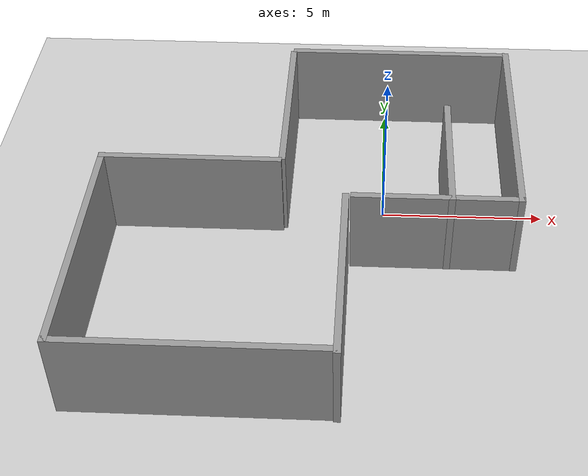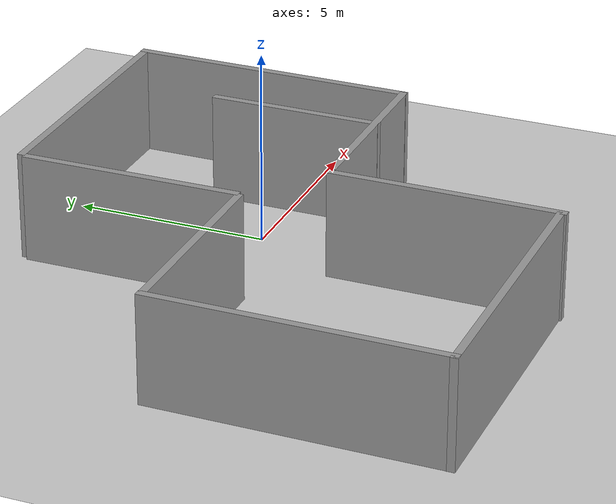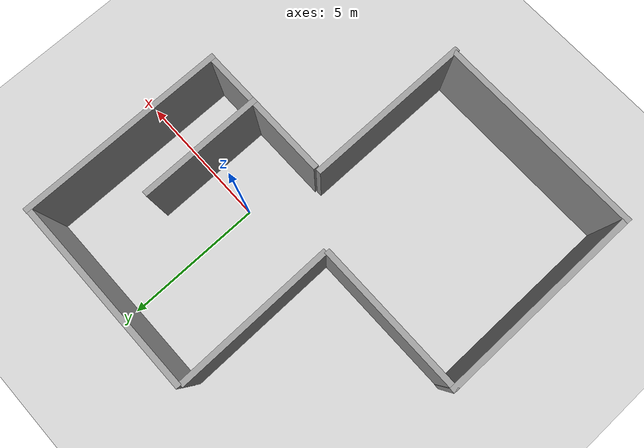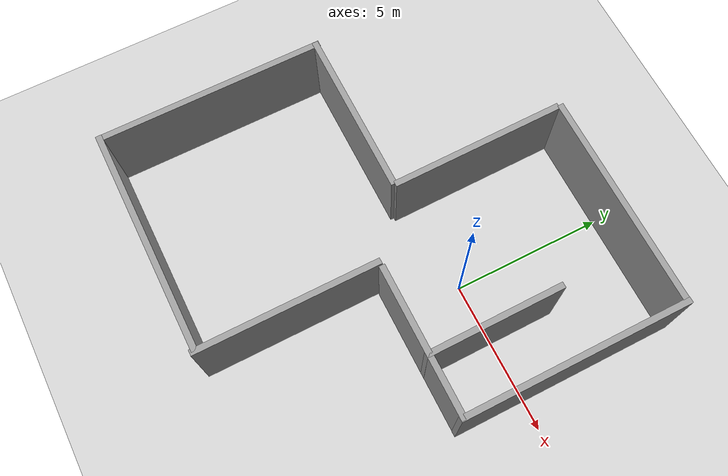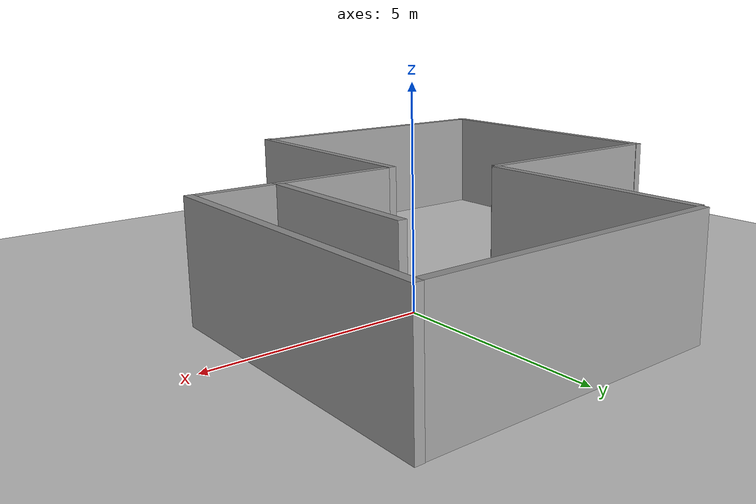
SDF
<sdf version="1.6">
 <world name="default">
  <light name="sun" type="directional">
   <pose>0 0 10 0 -0 0</pose>
   <diffuse>0.8 0.8 0.8 1</diffuse>
   <specular>0.1 0.1 0.1 1</specular>
   <attenuation>
    <range>1000</range>
    <constant>0.9</constant>
    <linear>0.01</linear>
    <quadratic>0.001</quadratic>
   </attenuation>
   <direction>-0.5 0.5 -1</direction>
  </light>
  <model name="ground_plane">
   <static>1</static>
   <link name="link">
    <collision name="collision">
     <geometry><plane><normal>0 0 1</normal><size>100 100</size></plane></geometry>
     <surface><friction><ode><mu>100</mu><mu2>50</mu2></ode></friction></surface>
    </collision>
    <visual name="visual">
     <cast_shadows>0</cast_shadows>
     <geometry><plane><normal>0 0 1</normal><size>100 100</size></plane></geometry>
     <material>
      <script><uri>file://media/materials/scripts/gazebo.material</uri><name>Gazebo/Grey</name></script>
     </material>
    </visual>
   </link>
  </model>
  <gravity>0 0 -9.8</gravity>
  <magnetic_field>6e-06 2.3e-05 -4.2e-05</magnetic_field>
  <atmosphere type="adiabatic"/>
  <physics name="default_physics" default="0" type="ode">
   <max_step_size>0.001</max_step_size>
   <real_time_factor>1</real_time_factor>
   <real_time_update_rate>1000</real_time_update_rate>
  </physics>
  <scene><ambient>0.4 0.4 0.4 1</ambient><background>0.7 0.7 0.7 1</background><shadows>1</shadows></scene>
  <spherical_coordinates>
   <surface_model>EARTH_WGS84</surface_model>
   <latitude_deg>0</latitude_deg>
   <longitude_deg>0</longitude_deg>
   <elevation>0</elevation>
   <heading_deg>0</heading_deg>
  </spherical_coordinates>
  <model name="grey_wall">
   <static>1</static>
   <link name="link">
    <pose>0 0 1.4 0 -0 0</pose>
    <collision name="collision"><geometry><box><size>7.5 0.2 2.8</size></box></geometry></collision>
    <visual name="visual">
     <cast_shadows>0</cast_shadows>
     <geometry><box><size>7.5 0.2 2.8</size></box></geometry>
     <material>
      <script>
       <uri>model://grey_wall/materials/scripts</uri>
       <uri>model://grey_wall/materials/textures</uri>
       <name>vrc/grey_wall</name>
      </script>
     </material>
    </visual>
   </link>
   <pose>-4.86665 -8.05482 0 0 -0 0</pose>
  </model>
  <model name="grey_wall_clone_0">
   <static>1</static>
   <link name="link">
    <pose>0 0 1.4 0 -0 0</pose>
    <collision name="collision"><geometry><box><size>7.5 0.2 2.8</size></box></geometry></collision>
    <visual name="visual">
     <cast_shadows>0</cast_shadows>
     <geometry><box><size>7.5 0.2 2.8</size></box></geometry>
     <material>
      <script>
       <uri>model://grey_wall/materials/scripts</uri>
       <uri>model://grey_wall/materials/textures</uri>
       <name>vrc/grey_wall</name>
      </script>
     </material>
    </visual>
   </link>
   <pose>-8.50591 -4.39101 0 0 0 -1.57217</pose>
  </model>
  <model name="grey_wall_clone_5">
   <static>1</static>
   <link name="link">
    <pose>0 0 1.4 0 -0 0</pose>
    <collision name="collision"><geometry><box><size>7.5 0.2 2.8</size></box></geometry></collision>
    <visual name="visual">
     <cast_shadows>0</cast_shadows>
     <geometry><box><size>7.5 0.2 2.8</size></box></geometry>
     <material>
      <script>
       <uri>model://grey_wall/materials/scripts</uri>
       <uri>model://grey_wall/materials/textures</uri>
       <name>vrc/grey_wall</name>
      </script>
     </material>
    </visual>
   </link>
   <pose>3.94714 1.39168 0 0 0 -1.57364</pose>
  </model>
  <model name="grey_wall_clone_1_0">
   <link name="link">
    <pose>0 0 1.4 0 -0 0</pose>
    <inertial>
     <mass>1</mass>
     <inertia><ixx>1</ixx><ixy>0</ixy><ixz>0</ixz><iyy>1</iyy><iyz>0</iyz><izz>1</izz></inertia>
    </inertial>
    <visual name="visual">
     <cast_shadows>0</cast_shadows>
     <geometry><box><size>6 0.2 2.8</size></box></geometry>
     <material>
      <script>
       <uri>model://grey_wall/materials/scripts</uri>
       <uri>model://grey_wall/materials/textures</uri>
       <name>vrc/grey_wall</name>
      </script>
      <ambient>1 1 1 1</ambient>
      <diffuse>1 1 1 1</diffuse>
      <specular>0 0 0 1</specular>
      <emissive>0 0 0 1</emissive>
      <shader type="vertex"><normal_map>__default__</normal_map></shader>
     </material>
    </visual>
    <collision name="collision">
     <geometry><box><size>6 0.2 2.8</size></box></geometry>
     <surface>
      <friction>
       <ode><mu>1</mu><mu2>1</mu2><fdir1>0 0 0</fdir1><slip1>0</slip1><slip2>0</slip2></ode>
       <torsional>
        <coefficient>1</coefficient>
        <patch_radius>0</patch_radius>
        <surface_radius>0</surface_radius>
        <use_patch_radius>1</use_patch_radius>
        <ode><slip>0</slip></ode>
       </torsional>
      </friction>
      <bounce><restitution_coefficient>0</restitution_coefficient><threshold>1e+06</threshold></bounce>
      <contact>
       <collide_without_contact>0</collide_without_contact>
       <collide_without_contact_bitmask>1</collide_without_contact_bitmask>
       <collide_bitmask>1</collide_bitmask>
       <ode>
        <soft_cfm>0</soft_cfm>
        <soft_erp>0.2</soft_erp>
        <kp>1e+13</kp>
        <kd>1</kd>
        <max_vel>0.01</max_vel>
        <min_depth>0</min_depth>
       </ode>
       <bullet>
        <split_impulse>1</split_impulse>
        <split_impulse_penetration_threshold>-0.01</split_impulse_penetration_threshold>
        <soft_cfm>0</soft_cfm>
        <soft_erp>0.2</soft_erp>
        <kp>1e+13</kp>
        <kd>1</kd>
       </bullet>
      </contact>
     </surface>
    </collision>
   </link>
   <static>1</static>
   <pose>-1.12216 -5.20621 0 0 0 -1.57047</pose>
  </model>
  <model name="grey_wall_2_0">
   <link name="link">
    <pose>0 0 1.4 0 -0 0</pose>
    <inertial>
     <mass>1</mass>
     <inertia><ixx>1</ixx><ixy>0</ixy><ixz>0</ixz><iyy>1</iyy><iyz>0</iyz><izz>1</izz></inertia>
    </inertial>
    <visual name="visual">
     <cast_shadows>0</cast_shadows>
     <geometry><box><size>4.5 0.2 2.8</size></box></geometry>
     <material>
      <script>
       <uri>model://grey_wall/materials/scripts</uri>
       <uri>model://grey_wall/materials/textures</uri>
       <name>vrc/grey_wall</name>
      </script>
      <ambient>1 1 1 1</ambient>
      <diffuse>1 1 1 1</diffuse>
      <specular>0 0 0 1</specular>
      <emissive>0 0 0 1</emissive>
      <shader type="vertex"><normal_map>__default__</normal_map></shader>
     </material>
    </visual>
    <collision name="collision">
     <geometry><box><size>4.5 0.2 2.8</size></box></geometry>
     <surface>
      <friction>
       <ode><mu>1</mu><mu2>1</mu2><fdir1>0 0 0</fdir1><slip1>0</slip1><slip2>0</slip2></ode>
       <torsional>
        <coefficient>1</coefficient>
        <patch_radius>0</patch_radius>
        <surface_radius>0</surface_radius>
        <use_patch_radius>1</use_patch_radius>
        <ode><slip>0</slip></ode>
       </torsional>
      </friction>
      <bounce><restitution_coefficient>0</restitution_coefficient><threshold>1e+06</threshold></bounce>
      <contact>
       <collide_without_contact>0</collide_without_contact>
       <collide_without_contact_bitmask>1</collide_without_contact_bitmask>
       <collide_bitmask>1</collide_bitmask>
       <ode>
        <soft_cfm>0</soft_cfm>
        <soft_erp>0.2</soft_erp>
        <kp>1e+13</kp>
        <kd>1</kd>
        <max_vel>0.01</max_vel>
        <min_depth>0</min_depth>
       </ode>
       <bullet>
        <split_impulse>1</split_impulse>
        <split_impulse_penetration_threshold>-0.01</split_impulse_penetration_threshold>
        <soft_cfm>0</soft_cfm>
        <soft_erp>0.2</soft_erp>
        <kp>1e+13</kp>
        <kd>1</kd>
       </bullet>
      </contact>
     </surface>
    </collision>
   </link>
   <static>1</static>
   <pose>1.93054 -0.105211 0 0 0 -1.56803</pose>
  </model>
  <model name="grey_wall_clone_4_0">
   <link name="link">
    <pose>0 0 1.4 0 -0 0</pose>
    <inertial>
     <mass>1</mass>
     <inertia><ixx>1</ixx><ixy>0</ixy><ixz>0</ixz><iyy>1</iyy><iyz>0</iyz><izz>1</izz></inertia>
    </inertial>
    <visual name="visual">
     <cast_shadows>0</cast_shadows>
     <geometry><box><size>5 0.2 2.8</size></box></geometry>
     <material>
      <script>
       <uri>model://grey_wall/materials/scripts</uri>
       <uri>model://grey_wall/materials/textures</uri>
       <name>vrc/grey_wall</name>
      </script>
      <ambient>1 1 1 1</ambient>
      <diffuse>1 1 1 1</diffuse>
      <specular>0 0 0 1</specular>
      <emissive>0 0 0 1</emissive>
      <shader type="vertex"><normal_map>__default__</normal_map></shader>
     </material>
    </visual>
    <collision name="collision">
     <geometry><box><size>5 0.2 2.8</size></box></geometry>
     <surface>
      <friction>
       <ode><mu>1</mu><mu2>1</mu2><fdir1>0 0 0</fdir1><slip1>0</slip1><slip2>0</slip2></ode>
       <torsional>
        <coefficient>1</coefficient>
        <patch_radius>0</patch_radius>
        <surface_radius>0</surface_radius>
        <use_patch_radius>1</use_patch_radius>
        <ode><slip>0</slip></ode>
       </torsional>
      </friction>
      <bounce><restitution_coefficient>0</restitution_coefficient><threshold>1e+06</threshold></bounce>
      <contact>
       <collide_without_contact>0</collide_without_contact>
       <collide_without_contact_bitmask>1</collide_without_contact_bitmask>
       <collide_bitmask>1</collide_bitmask>
       <ode>
        <soft_cfm>0</soft_cfm>
        <soft_erp>0.2</soft_erp>
        <kp>1e+13</kp>
        <kd>1</kd>
        <max_vel>0.01</max_vel>
        <min_depth>0</min_depth>
       </ode>
       <bullet>
        <split_impulse>1</split_impulse>
        <split_impulse_penetration_threshold>-0.01</split_impulse_penetration_threshold>
        <soft_cfm>0</soft_cfm>
        <soft_erp>0.2</soft_erp>
        <kp>1e+13</kp>
        <kd>1</kd>
       </bullet>
      </contact>
     </surface>
    </collision>
   </link>
   <static>1</static>
   <pose>1.51403 -2.25318 0 0 -0 0</pose>
  </model>
  <model name="grey_wall_clone_2_0">
   <link name="link">
    <pose>0 0 1.4 0 -0 0</pose>
    <inertial>
     <mass>1</mass>
     <inertia><ixx>1</ixx><ixy>0</ixy><ixz>0</ixz><iyy>1</iyy><iyz>0</iyz><izz>1</izz></inertia>
    </inertial>
    <visual name="visual">
     <cast_shadows>0</cast_shadows>
     <geometry><box><size>7 0.2 2.8</size></box></geometry>
     <material>
      <script>
       <uri>model://grey_wall/materials/scripts</uri>
       <uri>model://grey_wall/materials/textures</uri>
       <name>vrc/grey_wall</name>
      </script>
      <ambient>1 1 1 1</ambient>
      <diffuse>1 1 1 1</diffuse>
      <specular>0 0 0 1</specular>
      <emissive>0 0 0 1</emissive>
      <shader type="vertex"><normal_map>__default__</normal_map></shader>
     </material>
    </visual>
    <collision name="collision">
     <geometry><box><size>7 0.2 2.8</size></box></geometry>
     <surface>
      <friction>
       <ode><mu>1</mu><mu2>1</mu2><fdir1>0 0 0</fdir1><slip1>0</slip1><slip2>0</slip2></ode>
       <torsional>
        <coefficient>1</coefficient>
        <patch_radius>0</patch_radius>
        <surface_radius>0</surface_radius>
        <use_patch_radius>1</use_patch_radius>
        <ode><slip>0</slip></ode>
       </torsional>
      </friction>
      <bounce><restitution_coefficient>0</restitution_coefficient><threshold>1e+06</threshold></bounce>
      <contact>
       <collide_without_contact>0</collide_without_contact>
       <collide_without_contact_bitmask>1</collide_without_contact_bitmask>
       <collide_bitmask>1</collide_bitmask>
       <ode>
        <soft_cfm>0</soft_cfm>
        <soft_erp>0.2</soft_erp>
        <kp>1e+13</kp>
        <kd>1</kd>
        <max_vel>0.01</max_vel>
        <min_depth>0</min_depth>
       </ode>
       <bullet>
        <split_impulse>1</split_impulse>
        <split_impulse_penetration_threshold>-0.01</split_impulse_penetration_threshold>
        <soft_cfm>0</soft_cfm>
        <soft_erp>0.2</soft_erp>
        <kp>1e+13</kp>
        <kd>1</kd>
       </bullet>
      </contact>
     </surface>
    </collision>
   </link>
   <static>1</static>
   <pose>0.366999 5.03024 0 0 -0 0</pose>
  </model>
  <model name="grey_wall_clone_3_0_0">
   <link name="link">
    <pose>0 0 1.4 0 -0 0</pose>
    <inertial>
     <mass>1</mass>
     <inertia><ixx>1</ixx><ixy>0</ixy><ixz>0</ixz><iyy>1</iyy><iyz>0</iyz><izz>1</izz></inertia>
    </inertial>
    <visual name="visual">
     <cast_shadows>0</cast_shadows>
     <geometry><box><size>5.7 0.2 2.8</size></box></geometry>
     <material>
      <script>
       <uri>model://grey_wall/materials/scripts</uri>
       <uri>model://grey_wall/materials/textures</uri>
       <name>vrc/grey_wall</name>
      </script>
      <ambient>1 1 1 1</ambient>
      <diffuse>1 1 1 1</diffuse>
      <specular>0 0 0 1</specular>
      <emissive>0 0 0 1</emissive>
      <shader type="vertex"><normal_map>__default__</normal_map></shader>
     </material>
    </visual>
    <collision name="collision">
     <geometry><box><size>5.7 0.2 2.8</size></box></geometry>
     <surface>
      <friction>
       <ode><mu>1</mu><mu2>1</mu2><fdir1>0 0 0</fdir1><slip1>0</slip1><slip2>0</slip2></ode>
       <torsional>
        <coefficient>1</coefficient>
        <patch_radius>0</patch_radius>
        <surface_radius>0</surface_radius>
        <use_patch_radius>1</use_patch_radius>
        <ode><slip>0</slip></ode>
       </torsional>
      </friction>
      <bounce><restitution_coefficient>0</restitution_coefficient><threshold>1e+06</threshold></bounce>
      <contact>
       <collide_without_contact>0</collide_without_contact>
       <collide_without_contact_bitmask>1</collide_without_contact_bitmask>
       <collide_bitmask>1</collide_bitmask>
       <ode>
        <soft_cfm>0</soft_cfm>
        <soft_erp>0.2</soft_erp>
        <kp>1e+13</kp>
        <kd>1</kd>
        <max_vel>0.01</max_vel>
        <min_depth>0</min_depth>
       </ode>
       <bullet>
        <split_impulse>1</split_impulse>
        <split_impulse_penetration_threshold>-0.01</split_impulse_penetration_threshold>
        <soft_cfm>0</soft_cfm>
        <soft_erp>0.2</soft_erp>
        <kp>1e+13</kp>
        <kd>1</kd>
       </bullet>
      </contact>
     </surface>
    </collision>
   </link>
   <static>1</static>
   <pose>-3.10182 2.11476 0 0 0 -1.56366</pose>
  </model>
  <model name="grey_wall_clone_6">
   <link name="link">
    <pose>0 0 1.4 0 -0 0</pose>
    <inertial>
     <mass>1</mass>
     <inertia><ixx>1</ixx><ixy>0</ixy><ixz>0</ixz><iyy>1</iyy><iyz>0</iyz><izz>1</izz></inertia>
    </inertial>
    <visual name="visual">
     <cast_shadows>0</cast_shadows>
     <geometry><box><size>5.5 0.2 2.8</size></box></geometry>
     <material>
      <script>
       <uri>model://grey_wall/materials/scripts</uri>
       <uri>model://grey_wall/materials/textures</uri>
       <name>vrc/grey_wall</name>
      </script>
      <ambient>1 1 1 1</ambient>
      <diffuse>1 1 1 1</diffuse>
      <specular>0 0 0 1</specular>
      <emissive>0 0 0 1</emissive>
      <shader type="vertex"><normal_map>__default__</normal_map></shader>
     </material>
    </visual>
    <collision name="collision">
     <geometry><box><size>5.5 0.2 2.8</size></box></geometry>
     <surface>
      <friction>
       <ode><mu>1</mu><mu2>1</mu2><fdir1>0 0 0</fdir1><slip1>0</slip1><slip2>0</slip2></ode>
       <torsional>
        <coefficient>1</coefficient>
        <patch_radius>0</patch_radius>
        <surface_radius>0</surface_radius>
        <use_patch_radius>1</use_patch_radius>
        <ode><slip>0</slip></ode>
       </torsional>
      </friction>
      <bounce><restitution_coefficient>0</restitution_coefficient><threshold>1e+06</threshold></bounce>
      <contact>
       <collide_without_contact>0</collide_without_contact>
       <collide_without_contact_bitmask>1</collide_without_contact_bitmask>
       <collide_bitmask>1</collide_bitmask>
       <ode>
        <soft_cfm>0</soft_cfm>
        <soft_erp>0.2</soft_erp>
        <kp>1e+13</kp>
        <kd>1</kd>
        <max_vel>0.01</max_vel>
        <min_depth>0</min_depth>
       </ode>
       <bullet>
        <split_impulse>1</split_impulse>
        <split_impulse_penetration_threshold>-0.01</split_impulse_penetration_threshold>
        <soft_cfm>0</soft_cfm>
        <soft_erp>0.2</soft_erp>
        <kp>1e+13</kp>
        <kd>1</kd>
       </bullet>
      </contact>
     </surface>
    </collision>
   </link>
   <static>1</static>
   <pose>-5.84262 -0.754762 0 0 -0 0</pose>
  </model>
 </world>
</sdf>
